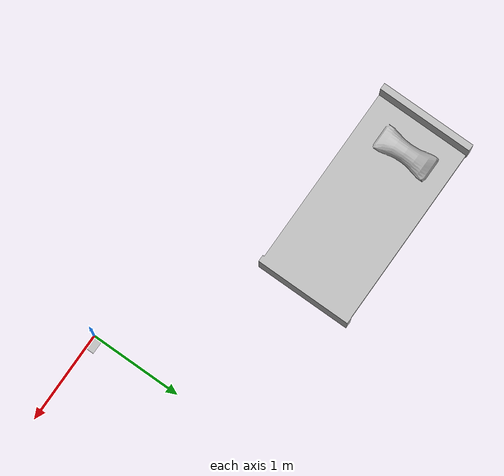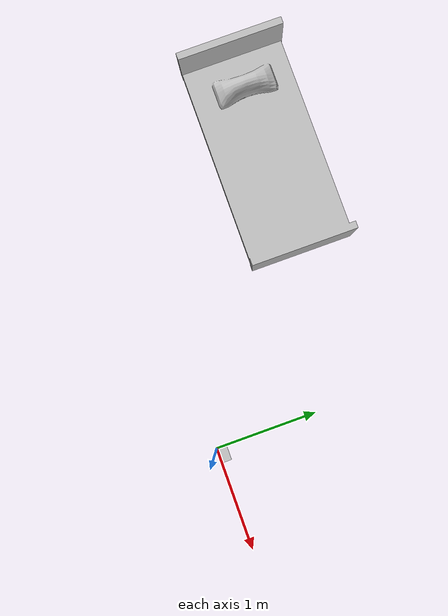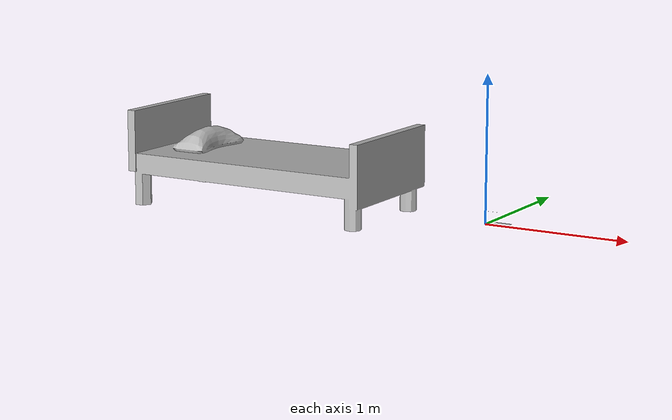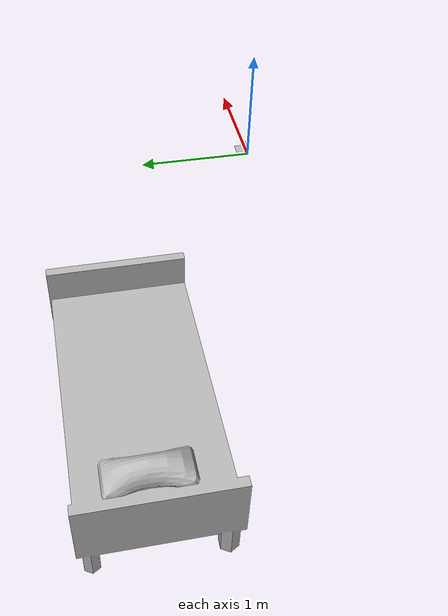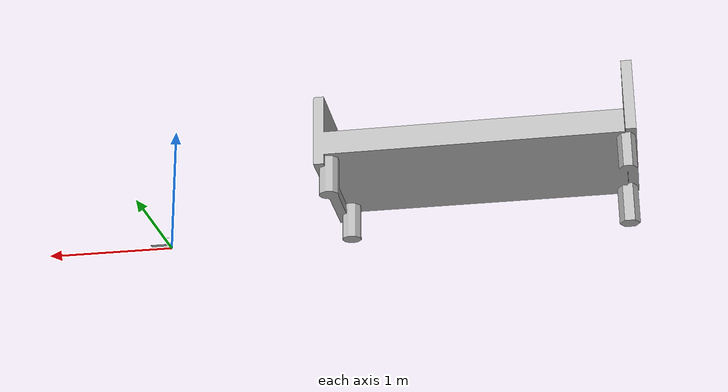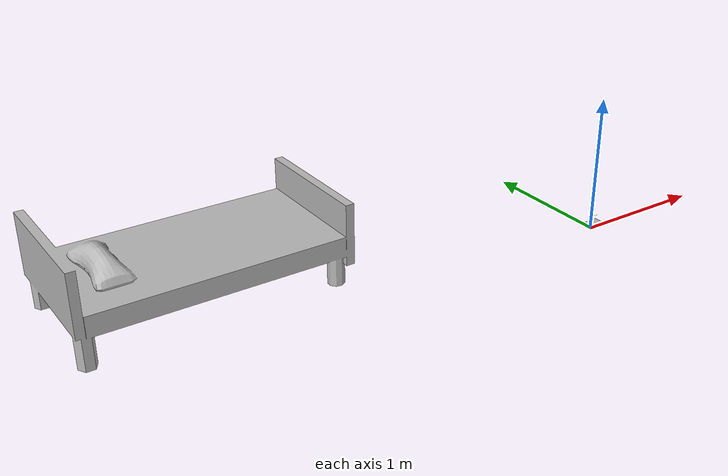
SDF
<?xml version="1.0"?>
<sdf version="1.5">
    <model name="bed">
        <static>true</static>

        <link name="bed">
            <pose>0 0 0 0 0 0</pose>
            <static>true</static>
            <visual name="visual">
                <geometry>
                        <mesh>
                        <uri>model://bed/bed_model.stl</uri>
                        <scale>0.015 0.015 0.015</scale>
                        </mesh>
                </geometry>
            </visual>
        </link>
    </model>
 </sdf>
